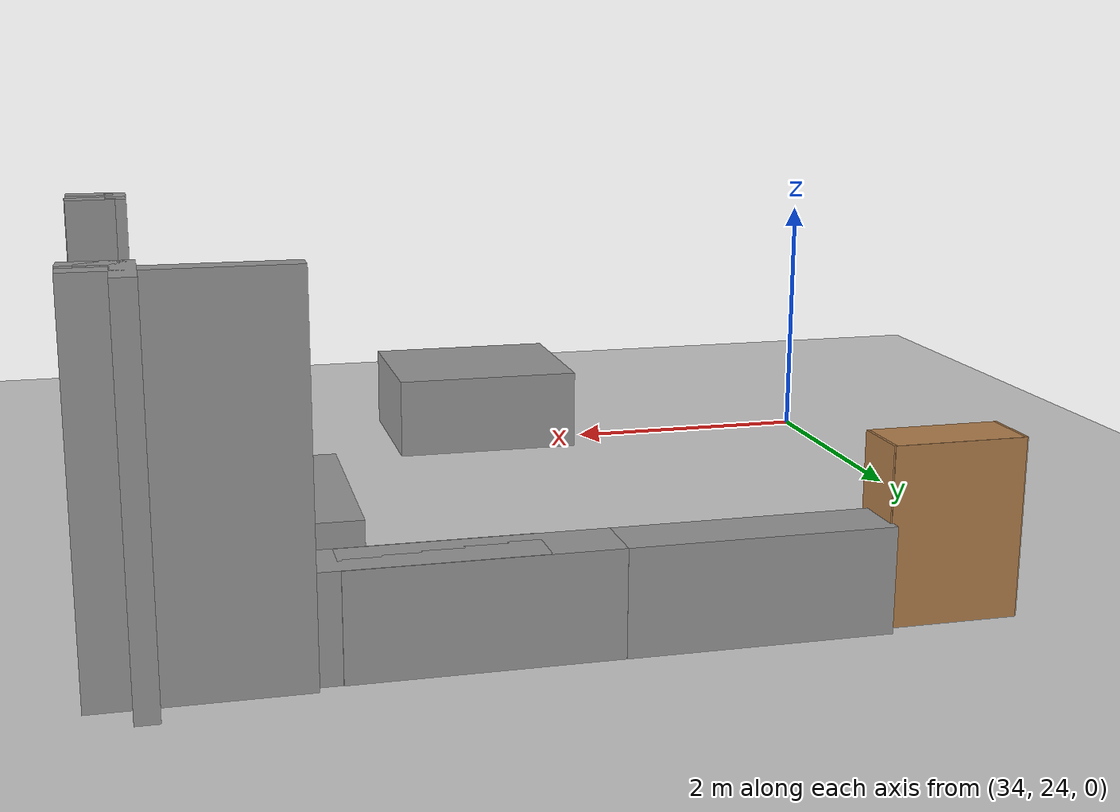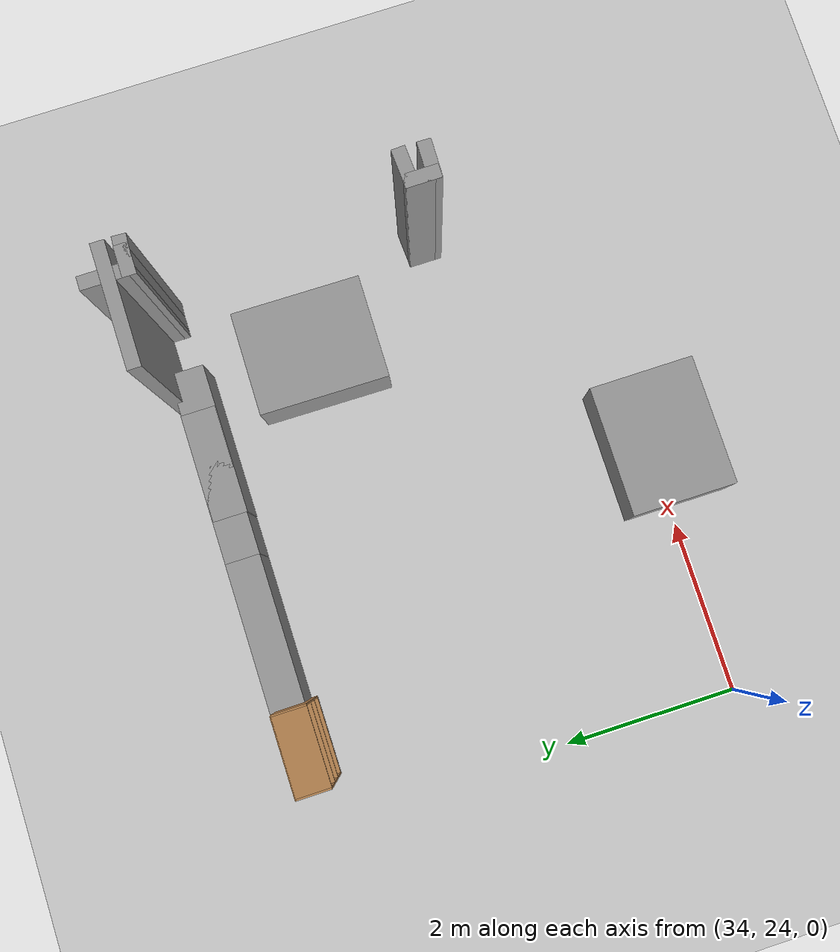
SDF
<sdf version="1.6">
 <world name="default">
  <model name="ground_plane">
   <static>1</static>
   <link name="link">
    <collision name="collision">
     <geometry><plane><normal>0 0 1</normal><size>100 100</size></plane></geometry>
     <surface><friction><ode><mu>100</mu><mu2>50</mu2></ode></friction></surface>
    </collision>
    <visual name="visual">
     <cast_shadows>0</cast_shadows>
     <geometry><plane><normal>0 0 1</normal><size>100 100</size></plane></geometry>
     <material>
      <script><uri>file://media/materials/scripts/gazebo.material</uri><name>Gazebo/Grey</name></script>
     </material>
    </visual>
   </link>
  </model>
  <model name="CVSSP">
   <pose>23.8714 24.094 0 0 -0 0</pose>
   <link name="Wall_10">
    <collision name="Wall_10_Collision">
     <geometry><box><size>0.244894 0.15 2.5</size></box></geometry>
     <pose>0 0 1.25 0 -0 0</pose>
    </collision>
    <visual name="Wall_10_Visual">
     <pose>0 0 1.25 0 -0 0</pose>
     <geometry><box><size>0.244894 0.15 2.5</size></box></geometry>
     <material>
      <script><uri>file://media/materials/scripts/gazebo.material</uri><name>Gazebo/Grey</name></script>
      <ambient>1 1 1 1</ambient>
     </material>
    </visual>
    <pose>16.3427 4.74414 0 0 -0 3.0813</pose>
   </link>
   <link name="Wall_106">
    <collision name="Wall_106_Collision">
     <geometry><box><size>1.33354 0.15 2.5</size></box></geometry>
     <pose>0 0 1.25 0 -0 0</pose>
    </collision>
    <visual name="Wall_106_Visual">
     <pose>0 0 1.25 0 -0 0</pose>
     <geometry><box><size>1.33354 0.15 2.5</size></box></geometry>
     <material>
      <script><uri>file://media/materials/scripts/gazebo.material</uri><name>Gazebo/Grey</name></script>
      <ambient>1 1 1 1</ambient>
     </material>
    </visual>
    <pose>15.7968 4.95877 0 0 -0 0</pose>
   </link>
   <link name="Wall_108">
    <collision name="Wall_108_Collision">
     <geometry><box><size>0.336995 0.15 2.5</size></box></geometry>
     <pose>0 0 1.25 0 -0 0</pose>
    </collision>
    <visual name="Wall_108_Visual">
     <pose>0 0 1.25 0 -0 0</pose>
     <geometry><box><size>0.336995 0.15 2.5</size></box></geometry>
     <material>
      <script><uri>file://media/materials/scripts/gazebo.material</uri><name>Gazebo/Grey</name></script>
      <ambient>1 1 1 1</ambient>
     </material>
    </visual>
    <pose>16.2019 4.74711 0 0 -0 3.1404</pose>
   </link>
   <link name="Wall_109">
    <collision name="Wall_109_Collision">
     <geometry><box><size>0.578815 0.15 2.5</size></box></geometry>
     <pose>0 0 1.25 0 -0 0</pose>
    </collision>
    <visual name="Wall_109_Visual">
     <pose>0 0 1.25 0 -0 0</pose>
     <geometry><box><size>0.578815 0.15 2.5</size></box></geometry>
     <material>
      <script><uri>file://media/materials/scripts/gazebo.material</uri><name>Gazebo/Grey</name></script>
      <ambient>1 1 1 1</ambient>
     </material>
    </visual>
    <pose>16.1084 4.96163 0 0 -0 1.5708</pose>
   </link>
   <link name="Wall_730">
    <collision name="Wall_730_Collision">
     <geometry><box><size>0.423174 0.15 2.5</size></box></geometry>
     <pose>0 0 1.25 0 -0 0</pose>
    </collision>
    <visual name="Wall_730_Visual">
     <pose>0 0 1.25 0 -0 0</pose>
     <geometry><box><size>0.423174 0.15 2.5</size></box></geometry>
     <material>
      <script><uri>file://media/materials/scripts/gazebo.material</uri><name>Gazebo/Grey</name></script>
      <ambient>1 1 1 1</ambient>
     </material>
    </visual>
    <pose>16.2619 1.84596 0 0 0 -3.08621</pose>
   </link>
   <link name="Wall_731">
    <collision name="Wall_731_Collision">
     <geometry><box><size>0.388455 0.15 2.5</size></box></geometry>
     <pose>0 0 1.25 0 -0 0</pose>
    </collision>
    <visual name="Wall_731_Visual">
     <pose>0 0 1.25 0 -0 0</pose>
     <geometry><box><size>0.388455 0.15 2.5</size></box></geometry>
     <material>
      <script><uri>file://media/materials/scripts/gazebo.material</uri><name>Gazebo/Grey</name></script>
      <ambient>1 1 1 1</ambient>
     </material>
    </visual>
    <pose>16.1221 1.71917 0 0 0 -1.56809</pose>
   </link>
   <link name="Wall_732">
    <collision name="Wall_732_Collision">
     <geometry><box><size>0.422814 0.15 2.5</size></box></geometry>
     <pose>0 0 1.25 0 -0 0</pose>
    </collision>
    <visual name="Wall_732_Visual">
     <pose>0 0 1.25 0 -0 0</pose>
     <geometry><box><size>0.422814 0.15 2.5</size></box></geometry>
     <material>
      <script><uri>file://media/materials/scripts/gazebo.material</uri><name>Gazebo/Grey</name></script>
      <ambient>1 1 1 1</ambient>
     </material>
    </visual>
    <pose>16.2588 1.5934 0 0 0 -0.020841</pose>
   </link>
   <static>1</static>
  </model>
  <model name="black_door_clone_clone">
   <link name="link">
    <inertial>
     <mass>1</mass>
     <inertia>
      <ixx>0.166667</ixx>
      <ixy>0</ixy>
      <ixz>0</ixz>
      <iyy>0.166667</iyy>
      <iyz>0</iyz>
      <izz>0.166667</izz>
     </inertia>
    </inertial>
    <gravity>0</gravity>
    <visual name="visual">
     <geometry><box><size>0.648213 1.21825 1.51833</size></box></geometry>
     <material>
      <script><name>Gazebo/Grey</name><uri>file://media/materials/scripts/gazebo.material</uri></script>
      <shader type="pixel"><normal_map>__default__</normal_map></shader>
      <ambient>0.01 0.001 0.001 1</ambient>
      <diffuse>0.7 0.7 0.7 1</diffuse>
      <specular>0.01 0.01 0.01 1</specular>
      <emissive>0 0 0 1</emissive>
     </material>
    </visual>
    <collision name="collision">
     <geometry><box><size>0.648213 1.21825 1.51833</size></box></geometry>
     <surface>
      <friction>
       <ode><mu>1</mu><mu2>1</mu2><fdir1>0 0 0</fdir1><slip1>0</slip1><slip2>0</slip2></ode>
       <torsional>
        <coefficient>1</coefficient>
        <patch_radius>0</patch_radius>
        <surface_radius>0</surface_radius>
        <use_patch_radius>1</use_patch_radius>
        <ode><slip>0</slip></ode>
       </torsional>
      </friction>
      <bounce><restitution_coefficient>0</restitution_coefficient><threshold>1e+06</threshold></bounce>
      <contact>
       <collide_without_contact>0</collide_without_contact>
       <collide_without_contact_bitmask>1</collide_without_contact_bitmask>
       <collide_bitmask>1</collide_bitmask>
       <ode>
        <soft_cfm>0</soft_cfm>
        <soft_erp>0.2</soft_erp>
        <kp>1e+13</kp>
        <kd>1</kd>
        <max_vel>0.01</max_vel>
        <min_depth>0</min_depth>
       </ode>
       <bullet>
        <split_impulse>1</split_impulse>
        <split_impulse_penetration_threshold>-0.01</split_impulse_penetration_threshold>
        <soft_cfm>0</soft_cfm>
        <soft_erp>0.2</soft_erp>
        <kp>1e+13</kp>
        <kd>1</kd>
       </bullet>
      </contact>
     </surface>
    </collision>
   </link>
   <static>1</static>
   <pose>36.9787 23.9554 0.396876 -1.6826 -1.56274 1.68361</pose>
  </model>
  <model name="black_door_clone_clone_clone">
   <link name="link">
    <inertial>
     <mass>1</mass>
     <inertia>
      <ixx>0.166667</ixx>
      <ixy>0</ixy>
      <ixz>0</ixz>
      <iyy>0.166667</iyy>
      <iyz>0</iyz>
      <izz>0.166667</izz>
     </inertia>
    </inertial>
    <gravity>0</gravity>
    <visual name="visual">
     <geometry><box><size>0.648213 1.21825 1.51833</size></box></geometry>
     <material>
      <script><name>Gazebo/Grey</name><uri>file://media/materials/scripts/gazebo.material</uri></script>
      <shader type="pixel"><normal_map>__default__</normal_map></shader>
      <ambient>0.01 0.001 0.001 1</ambient>
      <diffuse>0.7 0.7 0.7 1</diffuse>
      <specular>0.01 0.01 0.01 1</specular>
      <emissive>0 0 0 1</emissive>
     </material>
    </visual>
    <collision name="collision">
     <geometry><box><size>0.648213 1.21825 1.51833</size></box></geometry>
     <surface>
      <friction>
       <ode><mu>1</mu><mu2>1</mu2><fdir1>0 0 0</fdir1><slip1>0</slip1><slip2>0</slip2></ode>
       <torsional>
        <coefficient>1</coefficient>
        <patch_radius>0</patch_radius>
        <surface_radius>0</surface_radius>
        <use_patch_radius>1</use_patch_radius>
        <ode><slip>0</slip></ode>
       </torsional>
      </friction>
      <bounce><restitution_coefficient>0</restitution_coefficient><threshold>1e+06</threshold></bounce>
      <contact>
       <collide_without_contact>0</collide_without_contact>
       <collide_without_contact_bitmask>1</collide_without_contact_bitmask>
       <collide_bitmask>1</collide_bitmask>
       <ode>
        <soft_cfm>0</soft_cfm>
        <soft_erp>0.2</soft_erp>
        <kp>1e+13</kp>
        <kd>1</kd>
        <max_vel>0.01</max_vel>
        <min_depth>0</min_depth>
       </ode>
       <bullet>
        <split_impulse>1</split_impulse>
        <split_impulse_penetration_threshold>-0.01</split_impulse_penetration_threshold>
        <soft_cfm>0</soft_cfm>
        <soft_erp>0.2</soft_erp>
        <kp>1e+13</kp>
        <kd>1</kd>
       </bullet>
      </contact>
     </surface>
    </collision>
   </link>
   <static>1</static>
   <pose>39.1841 27.421 0.396876 -0.124478 -1.56274 1.6836</pose>
  </model>
  <model name="bookshelf_oak_clone_clone">
   <link name="link">
    <inertial><mass>1</mass></inertial>
    <visual name="visual4">
     <pose>0 -0.195 0.03 0 -0 0</pose>
     <geometry><box><size>0.88 0.4 0.06</size></box></geometry>
     <material>
      <script><uri>file://media/materials/scripts/gazebo.material</uri><name>Gazebo/Wood</name></script>
      <shader type="pixel"/>
     </material>
    </visual>
    <visual name="visual3">
     <pose>-0.45 -0.195 0.6 0 -0 0</pose>
     <geometry><box><size>0.02 0.4 1.2</size></box></geometry>
     <material>
      <script><uri>file://media/materials/scripts/gazebo.material</uri><name>Gazebo/Wood</name></script>
      <shader type="pixel"/>
     </material>
    </visual>
    <visual name="visual5">
     <pose>0 -0.195 1.19 0 -0 0</pose>
     <geometry><box><size>0.88 0.4 0.02</size></box></geometry>
     <material>
      <script><uri>file://media/materials/scripts/gazebo.material</uri><name>Gazebo/Wood</name></script>
      <shader type="pixel"/>
     </material>
    </visual>
    <visual name="visual2">
     <pose>0.45 -0.195 0.6 0 -0 0</pose>
     <geometry><box><size>0.02 0.4 1.2</size></box></geometry>
     <material>
      <script><uri>file://media/materials/scripts/gazebo.material</uri><name>Gazebo/Wood</name></script>
      <shader type="pixel"/>
     </material>
    </visual>
    <visual name="visual1">
     <pose>0 0.005 0.6 0 -0 0</pose>
     <geometry><box><size>0.9 0.01 1.2</size></box></geometry>
     <material>
      <script><uri>file://media/materials/scripts/gazebo.material</uri><name>Gazebo/Wood</name></script>
      <shader type="pixel"/>
     </material>
    </visual>
    <visual name="visual6">
     <pose>0 -0.195 0.43 0 -0 0</pose>
     <geometry><box><size>0.88 0.4 0.02</size></box></geometry>
     <material>
      <script><uri>file://media/materials/scripts/gazebo.material</uri><name>Gazebo/Wood</name></script>
      <shader type="pixel"/>
     </material>
    </visual>
    <visual name="visual7">
     <pose>0 -0.195 0.8 0 -0 0</pose>
     <geometry><box><size>0.88 0.4 0.02</size></box></geometry>
     <material>
      <script><uri>file://media/materials/scripts/gazebo.material</uri><name>Gazebo/Wood</name></script>
      <shader type="pixel"/>
     </material>
    </visual>
    <collision name="back">
     <pose>0 0.005 0.6 0 -0 0</pose>
     <geometry><box><size>0.9 0.01 1.2</size></box></geometry>
     <surface>
      <friction>
       <ode><mu>1</mu><mu2>1</mu2><fdir1>0 0 0</fdir1><slip1>0</slip1><slip2>0</slip2></ode>
       <torsional>
        <coefficient>1</coefficient>
        <patch_radius>0</patch_radius>
        <surface_radius>0</surface_radius>
        <use_patch_radius>1</use_patch_radius>
        <ode><slip>0</slip></ode>
       </torsional>
      </friction>
      <bounce><restitution_coefficient>0</restitution_coefficient><threshold>1e+06</threshold></bounce>
      <contact>
       <collide_without_contact>0</collide_without_contact>
       <collide_without_contact_bitmask>1</collide_without_contact_bitmask>
       <collide_bitmask>1</collide_bitmask>
       <ode>
        <soft_cfm>0</soft_cfm>
        <soft_erp>0.2</soft_erp>
        <kp>1e+13</kp>
        <kd>1</kd>
        <max_vel>0.01</max_vel>
        <min_depth>0</min_depth>
       </ode>
       <bullet>
        <split_impulse>1</split_impulse>
        <split_impulse_penetration_threshold>-0.01</split_impulse_penetration_threshold>
        <soft_cfm>0</soft_cfm>
        <soft_erp>0.2</soft_erp>
        <kp>1e+13</kp>
        <kd>1</kd>
       </bullet>
      </contact>
     </surface>
    </collision>
    <collision name="left_side">
     <pose>0.45 -0.195 0.6 0 -0 0</pose>
     <geometry><box><size>0.02 0.4 1.2</size></box></geometry>
     <surface>
      <friction>
       <ode><mu>1</mu><mu2>1</mu2><fdir1>0 0 0</fdir1><slip1>0</slip1><slip2>0</slip2></ode>
       <torsional>
        <coefficient>1</coefficient>
        <patch_radius>0</patch_radius>
        <surface_radius>0</surface_radius>
        <use_patch_radius>1</use_patch_radius>
        <ode><slip>0</slip></ode>
       </torsional>
      </friction>
      <bounce><restitution_coefficient>0</restitution_coefficient><threshold>1e+06</threshold></bounce>
      <contact>
       <collide_without_contact>0</collide_without_contact>
       <collide_without_contact_bitmask>1</collide_without_contact_bitmask>
       <collide_bitmask>1</collide_bitmask>
       <ode>
        <soft_cfm>0</soft_cfm>
        <soft_erp>0.2</soft_erp>
        <kp>1e+13</kp>
        <kd>1</kd>
        <max_vel>0.01</max_vel>
        <min_depth>0</min_depth>
       </ode>
       <bullet>
        <split_impulse>1</split_impulse>
        <split_impulse_penetration_threshold>-0.01</split_impulse_penetration_threshold>
        <soft_cfm>0</soft_cfm>
        <soft_erp>0.2</soft_erp>
        <kp>1e+13</kp>
        <kd>1</kd>
       </bullet>
      </contact>
     </surface>
    </collision>
    <collision name="right_side">
     <pose>-0.45 -0.195 0.6 0 -0 0</pose>
     <geometry><box><size>0.02 0.4 1.2</size></box></geometry>
     <surface>
      <friction>
       <ode><mu>1</mu><mu2>1</mu2><fdir1>0 0 0</fdir1><slip1>0</slip1><slip2>0</slip2></ode>
       <torsional>
        <coefficient>1</coefficient>
        <patch_radius>0</patch_radius>
        <surface_radius>0</surface_radius>
        <use_patch_radius>1</use_patch_radius>
        <ode><slip>0</slip></ode>
       </torsional>
      </friction>
      <bounce><restitution_coefficient>0</restitution_coefficient><threshold>1e+06</threshold></bounce>
      <contact>
       <collide_without_contact>0</collide_without_contact>
       <collide_without_contact_bitmask>1</collide_without_contact_bitmask>
       <collide_bitmask>1</collide_bitmask>
       <ode>
        <soft_cfm>0</soft_cfm>
        <soft_erp>0.2</soft_erp>
        <kp>1e+13</kp>
        <kd>1</kd>
        <max_vel>0.01</max_vel>
        <min_depth>0</min_depth>
       </ode>
       <bullet>
        <split_impulse>1</split_impulse>
        <split_impulse_penetration_threshold>-0.01</split_impulse_penetration_threshold>
        <soft_cfm>0</soft_cfm>
        <soft_erp>0.2</soft_erp>
        <kp>1e+13</kp>
        <kd>1</kd>
       </bullet>
      </contact>
     </surface>
    </collision>
    <collision name="bottom">
     <pose>0 -0.195 0.03 0 -0 0</pose>
     <geometry><box><size>0.88 0.4 0.06</size></box></geometry>
     <surface>
      <friction>
       <ode><mu>1</mu><mu2>1</mu2><fdir1>0 0 0</fdir1><slip1>0</slip1><slip2>0</slip2></ode>
       <torsional>
        <coefficient>1</coefficient>
        <patch_radius>0</patch_radius>
        <surface_radius>0</surface_radius>
        <use_patch_radius>1</use_patch_radius>
        <ode><slip>0</slip></ode>
       </torsional>
      </friction>
      <bounce><restitution_coefficient>0</restitution_coefficient><threshold>1e+06</threshold></bounce>
      <contact>
       <collide_without_contact>0</collide_without_contact>
       <collide_without_contact_bitmask>1</collide_without_contact_bitmask>
       <collide_bitmask>1</collide_bitmask>
       <ode>
        <soft_cfm>0</soft_cfm>
        <soft_erp>0.2</soft_erp>
        <kp>1e+13</kp>
        <kd>1</kd>
        <max_vel>0.01</max_vel>
        <min_depth>0</min_depth>
       </ode>
       <bullet>
        <split_impulse>1</split_impulse>
        <split_impulse_penetration_threshold>-0.01</split_impulse_penetration_threshold>
        <soft_cfm>0</soft_cfm>
        <soft_erp>0.2</soft_erp>
        <kp>1e+13</kp>
        <kd>1</kd>
       </bullet>
      </contact>
     </surface>
    </collision>
    <collision name="top">
     <pose>0 -0.195 1.19 0 -0 0</pose>
     <geometry><box><size>0.88 0.4 0.02</size></box></geometry>
     <surface>
      <friction>
       <ode><mu>1</mu><mu2>1</mu2><fdir1>0 0 0</fdir1><slip1>0</slip1><slip2>0</slip2></ode>
       <torsional>
        <coefficient>1</coefficient>
        <patch_radius>0</patch_radius>
        <surface_radius>0</surface_radius>
        <use_patch_radius>1</use_patch_radius>
        <ode><slip>0</slip></ode>
       </torsional>
      </friction>
      <bounce><restitution_coefficient>0</restitution_coefficient><threshold>1e+06</threshold></bounce>
      <contact>
       <collide_without_contact>0</collide_without_contact>
       <collide_without_contact_bitmask>1</collide_without_contact_bitmask>
       <collide_bitmask>1</collide_bitmask>
       <ode>
        <soft_cfm>0</soft_cfm>
        <soft_erp>0.2</soft_erp>
        <kp>1e+13</kp>
        <kd>1</kd>
        <max_vel>0.01</max_vel>
        <min_depth>0</min_depth>
       </ode>
       <bullet>
        <split_impulse>1</split_impulse>
        <split_impulse_penetration_threshold>-0.01</split_impulse_penetration_threshold>
        <soft_cfm>0</soft_cfm>
        <soft_erp>0.2</soft_erp>
        <kp>1e+13</kp>
        <kd>1</kd>
       </bullet>
      </contact>
     </surface>
    </collision>
    <collision name="low_shelf">
     <pose>0 -0.195 0.43 0 -0 0</pose>
     <geometry><box><size>0.88 0.4 0.02</size></box></geometry>
     <surface>
      <friction>
       <ode><mu>1</mu><mu2>1</mu2><fdir1>0 0 0</fdir1><slip1>0</slip1><slip2>0</slip2></ode>
       <torsional>
        <coefficient>1</coefficient>
        <patch_radius>0</patch_radius>
        <surface_radius>0</surface_radius>
        <use_patch_radius>1</use_patch_radius>
        <ode><slip>0</slip></ode>
       </torsional>
      </friction>
      <bounce><restitution_coefficient>0</restitution_coefficient><threshold>1e+06</threshold></bounce>
      <contact>
       <collide_without_contact>0</collide_without_contact>
       <collide_without_contact_bitmask>1</collide_without_contact_bitmask>
       <collide_bitmask>1</collide_bitmask>
       <ode>
        <soft_cfm>0</soft_cfm>
        <soft_erp>0.2</soft_erp>
        <kp>1e+13</kp>
        <kd>1</kd>
        <max_vel>0.01</max_vel>
        <min_depth>0</min_depth>
       </ode>
       <bullet>
        <split_impulse>1</split_impulse>
        <split_impulse_penetration_threshold>-0.01</split_impulse_penetration_threshold>
        <soft_cfm>0</soft_cfm>
        <soft_erp>0.2</soft_erp>
        <kp>1e+13</kp>
        <kd>1</kd>
       </bullet>
      </contact>
     </surface>
    </collision>
    <collision name="high_shelf">
     <pose>0 -0.195 0.8 0 -0 0</pose>
     <geometry><box><size>0.88 0.4 0.02</size></box></geometry>
     <surface>
      <friction>
       <ode><mu>1</mu><mu2>1</mu2><fdir1>0 0 0</fdir1><slip1>0</slip1><slip2>0</slip2></ode>
       <torsional>
        <coefficient>1</coefficient>
        <patch_radius>0</patch_radius>
        <surface_radius>0</surface_radius>
        <use_patch_radius>1</use_patch_radius>
        <ode><slip>0</slip></ode>
       </torsional>
      </friction>
      <bounce><restitution_coefficient>0</restitution_coefficient><threshold>1e+06</threshold></bounce>
      <contact>
       <collide_without_contact>0</collide_without_contact>
       <collide_without_contact_bitmask>1</collide_without_contact_bitmask>
       <collide_bitmask>1</collide_bitmask>
       <ode>
        <soft_cfm>0</soft_cfm>
        <soft_erp>0.2</soft_erp>
        <kp>1e+13</kp>
        <kd>1</kd>
        <max_vel>0.01</max_vel>
        <min_depth>0</min_depth>
       </ode>
       <bullet>
        <split_impulse>1</split_impulse>
        <split_impulse_penetration_threshold>-0.01</split_impulse_penetration_threshold>
        <soft_cfm>0</soft_cfm>
        <soft_erp>0.2</soft_erp>
        <kp>1e+13</kp>
        <kd>1</kd>
       </bullet>
      </contact>
     </surface>
    </collision>
   </link>
   <static>1</static>
   <pose>34.9366 28.967 0 0 -0 0.003063</pose>
  </model>
  <model name="plastic_box_0_clone_0">
   <link name="Wall">
    <pose>0 0 0.1985 0 -0 0</pose>
    <inertial>
     <mass>5</mass>
     <inertia><ixx>0.1022</ixx><iyy>0.4107</iyy><izz>0.3815</izz><ixy>0</ixy><ixz>0</ixz><iyz>0</iyz></inertia>
    </inertial>
    <gravity>0</gravity>
    <visual name="Wall_Visual">
     <geometry><box><size>1.75 0.4 1</size></box></geometry>
     <material>
      <script><uri>file://media/materials/scripts/gazebo.material</uri><name>Gazebo/Grey</name></script>
      <ambient>1 1 1 1</ambient>
      <shader type="pixel"><normal_map>__default__</normal_map></shader>
      <diffuse>0.7 0.7 0.7 1</diffuse>
      <specular>0.01 0.01 0.01 1</specular>
      <emissive>0 0 0 1</emissive>
     </material>
    </visual>
    <collision name="Wall_Collision">
     <geometry><box><size>1.75 0.4 1</size></box></geometry>
     <surface>
      <friction>
       <ode><mu>1</mu><mu2>1</mu2><fdir1>0 0 0</fdir1><slip1>0</slip1><slip2>0</slip2></ode>
       <torsional>
        <coefficient>1</coefficient>
        <patch_radius>0</patch_radius>
        <surface_radius>0</surface_radius>
        <use_patch_radius>1</use_patch_radius>
        <ode><slip>0</slip></ode>
       </torsional>
      </friction>
      <bounce><restitution_coefficient>0</restitution_coefficient><threshold>1e+06</threshold></bounce>
      <contact>
       <collide_without_contact>0</collide_without_contact>
       <collide_without_contact_bitmask>1</collide_without_contact_bitmask>
       <collide_bitmask>1</collide_bitmask>
       <ode>
        <soft_cfm>0</soft_cfm>
        <soft_erp>0.2</soft_erp>
        <kp>1e+13</kp>
        <kd>1</kd>
        <max_vel>0.01</max_vel>
        <min_depth>0</min_depth>
       </ode>
       <bullet>
        <split_impulse>1</split_impulse>
        <split_impulse_penetration_threshold>-0.01</split_impulse_penetration_threshold>
        <soft_cfm>0</soft_cfm>
        <soft_erp>0.2</soft_erp>
        <kp>1e+13</kp>
        <kd>1</kd>
       </bullet>
      </contact>
     </surface>
    </collision>
   </link>
   <static>1</static>
   <pose>36.2506 28.8469 0 0 -0 0</pose>
  </model>
  <model name="plastic_box_0_clone_0_clone">
   <link name="Wall">
    <pose>0 0 0.1985 0 -0 0</pose>
    <inertial>
     <mass>5</mass>
     <inertia><ixx>0.1022</ixx><iyy>0.4107</iyy><izz>0.3815</izz><ixy>0</ixy><ixz>0</ixz><iyz>0</iyz></inertia>
    </inertial>
    <gravity>0</gravity>
    <visual name="Wall_Visual">
     <geometry><box><size>1.75 0.4 1</size></box></geometry>
     <material>
      <script><uri>file://media/materials/scripts/gazebo.material</uri><name>Gazebo/Grey</name></script>
      <ambient>1 1 1 1</ambient>
      <shader type="pixel"><normal_map>__default__</normal_map></shader>
      <diffuse>0.7 0.7 0.7 1</diffuse>
      <specular>0.01 0.01 0.01 1</specular>
      <emissive>0 0 0 1</emissive>
     </material>
    </visual>
    <collision name="Wall_Collision">
     <geometry><box><size>1.75 0.4 1</size></box></geometry>
     <surface>
      <friction>
       <ode><mu>1</mu><mu2>1</mu2><fdir1>0 0 0</fdir1><slip1>0</slip1><slip2>0</slip2></ode>
       <torsional>
        <coefficient>1</coefficient>
        <patch_radius>0</patch_radius>
        <surface_radius>0</surface_radius>
        <use_patch_radius>1</use_patch_radius>
        <ode><slip>0</slip></ode>
       </torsional>
      </friction>
      <bounce><restitution_coefficient>0</restitution_coefficient><threshold>1e+06</threshold></bounce>
      <contact>
       <collide_without_contact>0</collide_without_contact>
       <collide_without_contact_bitmask>1</collide_without_contact_bitmask>
       <collide_bitmask>1</collide_bitmask>
       <ode>
        <soft_cfm>0</soft_cfm>
        <soft_erp>0.2</soft_erp>
        <kp>1e+13</kp>
        <kd>1</kd>
        <max_vel>0.01</max_vel>
        <min_depth>0</min_depth>
       </ode>
       <bullet>
        <split_impulse>1</split_impulse>
        <split_impulse_penetration_threshold>-0.01</split_impulse_penetration_threshold>
        <soft_cfm>0</soft_cfm>
        <soft_erp>0.2</soft_erp>
        <kp>1e+13</kp>
        <kd>1</kd>
       </bullet>
      </contact>
     </surface>
    </collision>
   </link>
   <static>1</static>
   <pose>37.9749 28.8458 0 0 -0 0</pose>
  </model>
  <model name="plastic_box_0_clone_0_clone_clone">
   <link name="Wall">
    <pose>0 0 0.1985 0 -0 0</pose>
    <inertial>
     <mass>5</mass>
     <inertia><ixx>0.1022</ixx><iyy>0.4107</iyy><izz>0.3815</izz><ixy>0</ixy><ixz>0</ixz><iyz>0</iyz></inertia>
    </inertial>
    <gravity>0</gravity>
    <visual name="Wall_Visual">
     <geometry><box><size>1.75 0.4 1</size></box></geometry>
     <material>
      <script><uri>file://media/materials/scripts/gazebo.material</uri><name>Gazebo/Grey</name></script>
      <ambient>1 1 1 1</ambient>
      <shader type="pixel"><normal_map>__default__</normal_map></shader>
      <diffuse>0.7 0.7 0.7 1</diffuse>
      <specular>0.01 0.01 0.01 1</specular>
      <emissive>0 0 0 1</emissive>
     </material>
    </visual>
    <collision name="Wall_Collision">
     <geometry><box><size>1.75 0.4 1</size></box></geometry>
     <surface>
      <friction>
       <ode><mu>1</mu><mu2>1</mu2><fdir1>0 0 0</fdir1><slip1>0</slip1><slip2>0</slip2></ode>
       <torsional>
        <coefficient>1</coefficient>
        <patch_radius>0</patch_radius>
        <surface_radius>0</surface_radius>
        <use_patch_radius>1</use_patch_radius>
        <ode><slip>0</slip></ode>
       </torsional>
      </friction>
      <bounce><restitution_coefficient>0</restitution_coefficient><threshold>1e+06</threshold></bounce>
      <contact>
       <collide_without_contact>0</collide_without_contact>
       <collide_without_contact_bitmask>1</collide_without_contact_bitmask>
       <collide_bitmask>1</collide_bitmask>
       <ode>
        <soft_cfm>0</soft_cfm>
        <soft_erp>0.2</soft_erp>
        <kp>1e+13</kp>
        <kd>1</kd>
        <max_vel>0.01</max_vel>
        <min_depth>0</min_depth>
       </ode>
       <bullet>
        <split_impulse>1</split_impulse>
        <split_impulse_penetration_threshold>-0.01</split_impulse_penetration_threshold>
        <soft_cfm>0</soft_cfm>
        <soft_erp>0.2</soft_erp>
        <kp>1e+13</kp>
        <kd>1</kd>
       </bullet>
      </contact>
     </surface>
    </collision>
   </link>
   <static>1</static>
   <pose>38.4665 28.8394 0 0 -0 0</pose>
  </model>
 </world>
</sdf>
